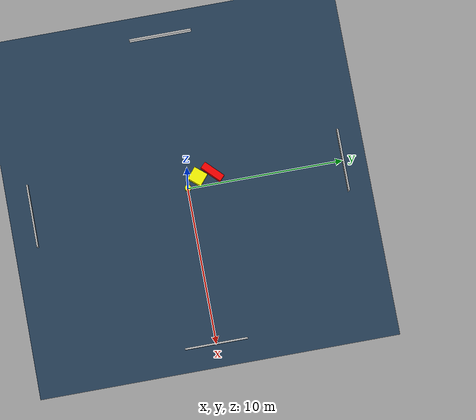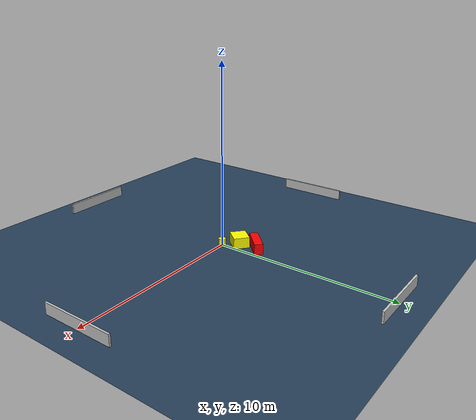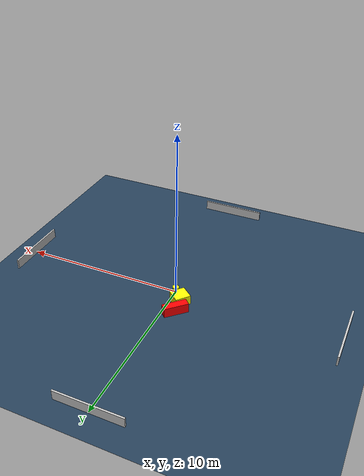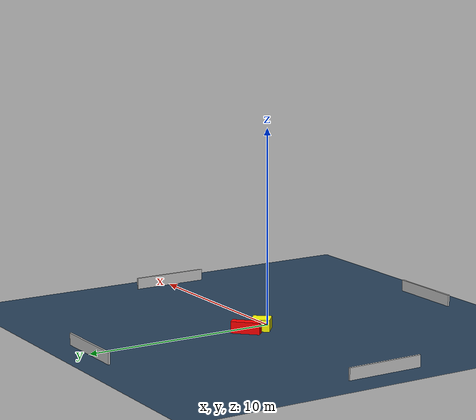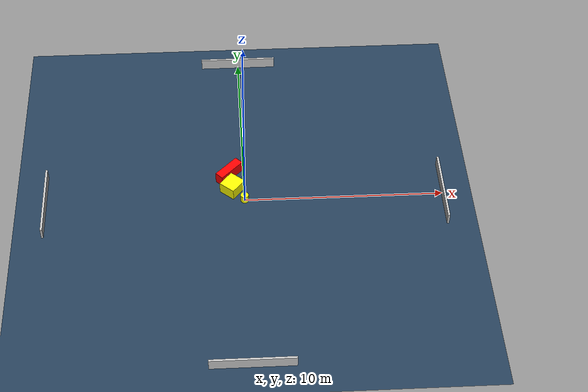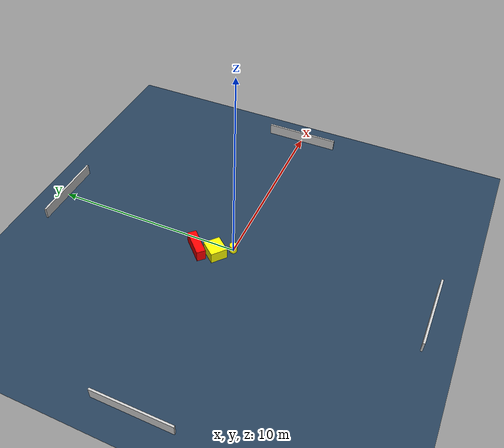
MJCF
<?xml version="1.0" ?>
<mujoco model="generated_environment">
  <option timestep="0.01" integrator="RK4" cone="elliptic"/>
  <default>
    <geom density="1"/>
  </default>
  <asset>
    <texture builtin="gradient" height="3072" name="skybox" rgb1="0.3 0.5 0.7" rgb2="0 0 0" type="skybox" width="512"/>
    <texture builtin="checker" height="300" name="groundplane" rgb1="0.2 0.3 0.4" rgb2="0.1 0.2 0.3" type="2d" width="300"/>
    <material name="groundplane" reflectance="0.2" texrepeat="5 5" texture="groundplane"/>
  </asset>
  <worldbody>
    <light dir="0 0 -1" directional="true" pos="0 0 1.5"/>
    <geom condim="3" friction="0.5 0.005 0.001" material="groundplane" name="floor" pos="0 0 0" size="0 0 0.05" type="plane"/>
    <body name="walls">
      <geom name="wall_1" condim="4" pos="-10.0 0.0 0.3" rgba="0.800000011920929 0.800000011920929 0.800000011920929 1.0" size="0.05 2.0 0.3" type="box"/>
      <geom name="wall_2" condim="4" pos="10.0 0.0 0.3" rgba="0.800000011920929 0.800000011920929 0.800000011920929 1.0" size="0.05 2.0 0.3" type="box"/>
      <geom name="wall_3" condim="4" pos="0.0 -10.0 0.3" rgba="0.800000011920929 0.800000011920929 0.800000011920929 1.0" size="2.0 0.05 0.3" type="box"/>
      <geom name="wall_4" condim="4" pos="0.0 10.0 0.3" rgba="0.800000011920929 0.800000011920929 0.800000011920929 1.0" size="2.0 0.05 0.3" type="box"/>
    </body>
    <body name="robot">
      <joint name="joint_x" type="slide" pos="0 0 0" axis="1 0 0"/>
      <joint name="joint_y" type="slide" pos="0 0 0" axis="0 1 0"/>
      <geom name="robot" type="cylinder" pos="0.0 0.0 0.2" size="0.2 0.2 0.0" mass="5.0" friction="1.0 0.005 0.0001" condim="4" rgba="1.0 1.0 0.0 1.0"/>
    </body>
    <body name="obstacle_1_movable">
      <geom name="obstacle_1_movable" condim="4" pos="-0.5940241348398435 0.7282035043768584 0.3" euler="0 0 139.9566714218291" friction="0.0 0.005 0.001" rgba="1.0 1.0 0.0 1.0" size="0.4368128457714336 0.46891608492690284 0.3" type="box" mass="0.1"/>
      <joint type="free"/>
    </body>
    <body name="obstacle_2_static">
      <geom name="obstacle_2_static" condim="4" pos="-0.7292189015352617 1.7137281947321985 0.3" euler="0 0 224.98602825541758" friction="0.0 0.005 0.001" rgba="1.0 0.0 0.0 1.0" size="0.7421998406400867 0.23149138187298898 0.3" type="box"/>
    </body>
  </worldbody>
  <actuator>
    <motor name="actuator_x" joint="joint_x" gear="1" ctrlrange="-1 1"/>
    <motor name="actuator_y" joint="joint_y" gear="1" ctrlrange="-1 1"/>
  </actuator>
</mujoco>
